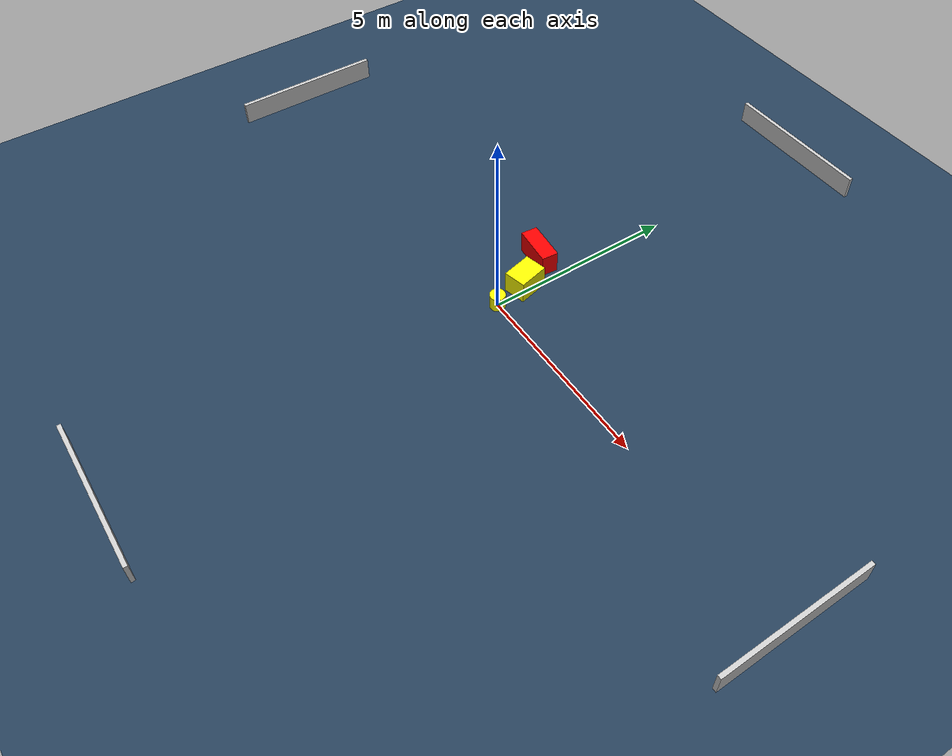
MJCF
<?xml version="1.0" ?>
<mujoco model="generated_environment">
  <option timestep="0.01" integrator="RK4" cone="elliptic"/>
  <default>
    <geom density="1"/>
  </default>
  <asset>
    <texture builtin="gradient" height="3072" name="skybox" rgb1="0.3 0.5 0.7" rgb2="0 0 0" type="skybox" width="512"/>
    <texture builtin="checker" height="300" name="groundplane" rgb1="0.2 0.3 0.4" rgb2="0.1 0.2 0.3" type="2d" width="300"/>
    <material name="groundplane" reflectance="0.2" texrepeat="5 5" texture="groundplane"/>
  </asset>
  <worldbody>
    <light dir="0 0 -1" directional="true" pos="0 0 1.5"/>
    <geom condim="3" friction="0.5 0.005 0.001" material="groundplane" name="floor" pos="0 0 0" size="0 0 0.05" type="plane"/>
    <body name="walls">
      <geom name="wall_1" condim="4" pos="-10.0 0.0 0.3" rgba="0.800000011920929 0.800000011920929 0.800000011920929 1.0" size="0.05 2.0 0.3" type="box"/>
      <geom name="wall_2" condim="4" pos="10.0 0.0 0.3" rgba="0.800000011920929 0.800000011920929 0.800000011920929 1.0" size="0.05 2.0 0.3" type="box"/>
      <geom name="wall_3" condim="4" pos="0.0 -10.0 0.3" rgba="0.800000011920929 0.800000011920929 0.800000011920929 1.0" size="2.0 0.05 0.3" type="box"/>
      <geom name="wall_4" condim="4" pos="0.0 10.0 0.3" rgba="0.800000011920929 0.800000011920929 0.800000011920929 1.0" size="2.0 0.05 0.3" type="box"/>
    </body>
    <body name="robot">
      <joint name="joint_x" type="slide" pos="0 0 0" axis="1 0 0"/>
      <joint name="joint_y" type="slide" pos="0 0 0" axis="0 1 0"/>
      <geom name="robot" type="cylinder" pos="0.0 0.0 0.2" size="0.2 0.2 0.0" mass="5.0" friction="1.0 0.005 0.0001" condim="4" rgba="1.0 1.0 0.0 1.0"/>
    </body>
    <body name="obstacle_1_movable">
      <geom name="obstacle_1_movable" condim="4" pos="-0.12349512367365179 0.8989340922814577 0.3" euler="0 0 283.2038657806824" friction="0.0 0.005 0.001" rgba="1.0 1.0 0.0 1.0" size="0.3959413277489632 0.29341396993305424 0.3" type="box" mass="0.1"/>
      <joint type="free"/>
    </body>
    <body name="obstacle_2_static">
      <geom name="obstacle_2_static" condim="4" pos="-0.7019647647948662 1.740119544598953 0.3" euler="0 0 174.66525268026817" friction="0.0 0.005 0.001" rgba="1.0 0.0 0.0 1.0" size="0.5255430575608616 0.2177703835629897 0.3" type="box"/>
    </body>
  </worldbody>
  <actuator>
    <motor name="actuator_x" joint="joint_x" gear="1" ctrlrange="-1 1"/>
    <motor name="actuator_y" joint="joint_y" gear="1" ctrlrange="-1 1"/>
  </actuator>
</mujoco>
